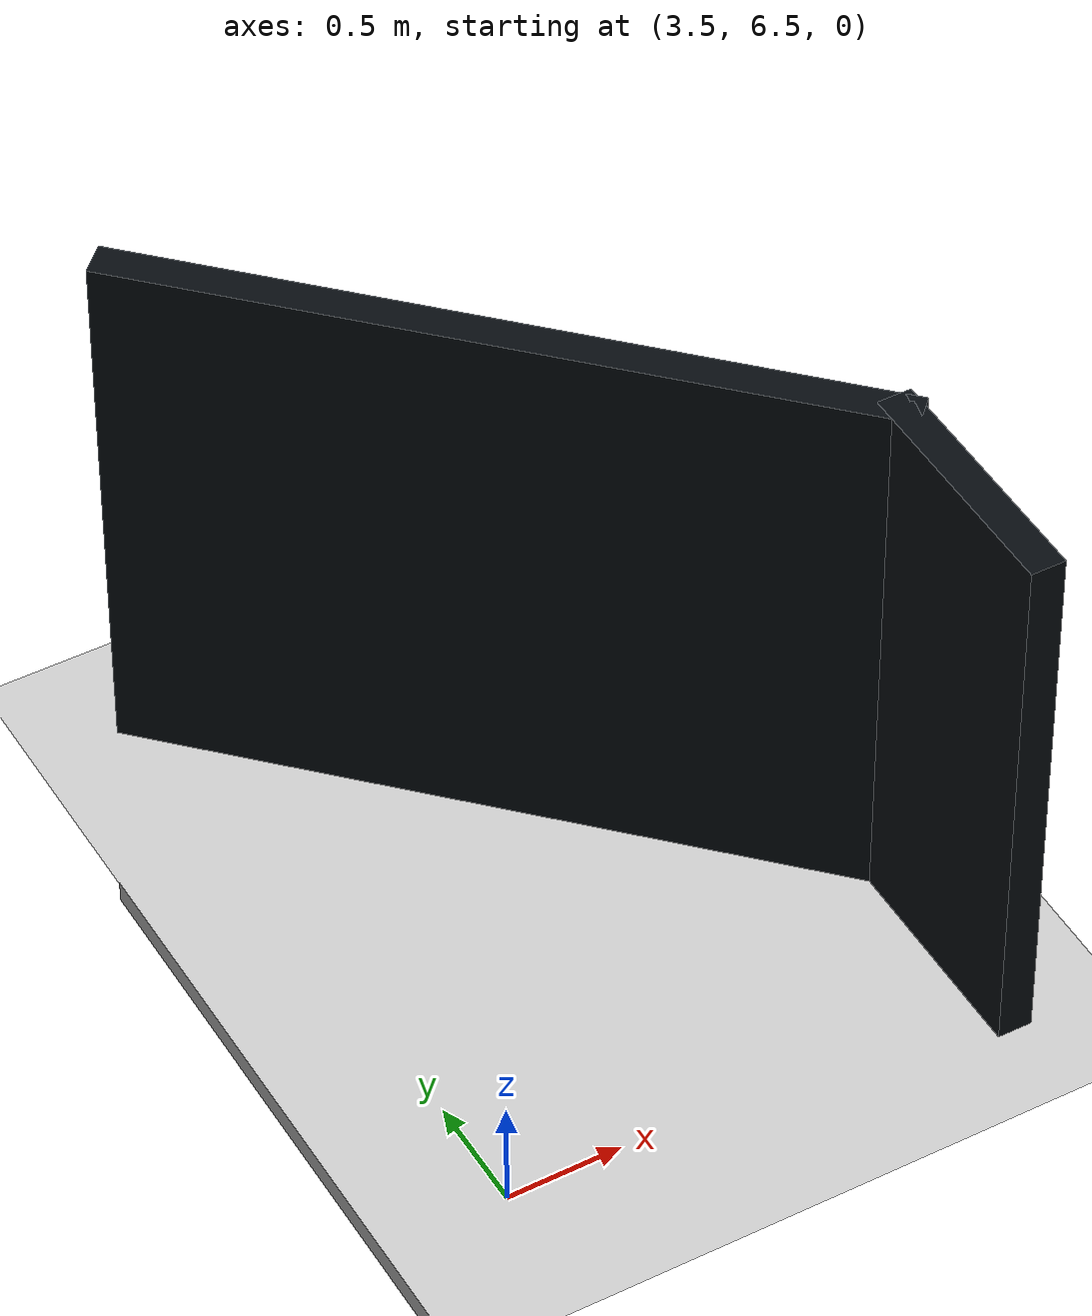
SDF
<sdf version="1.7">
 <world name="default">
  <model name="ground_plane">
   <static>1</static>
   <link name="link">
    <collision name="collision">
     <geometry><plane><normal>0 0 1</normal><size>100 100</size></plane></geometry>
     <surface><friction><ode><mu>100</mu><mu2>50</mu2></ode></friction></surface>
    </collision>
    <visual name="visual">
     <cast_shadows>0</cast_shadows>
     <geometry><plane><normal>0 0 1</normal><size>100 100</size></plane></geometry>
     <material>
      <script><uri>file://media/materials/scripts/gazebo.material</uri><name>Gazebo/Grey</name></script>
      <ambient>0.55 0.55 0.53 1</ambient>
      <diffuse>0.55 0.55 0.53 1</diffuse>
      <specular>0.08 0.08 0.08 1</specular>
      <emissive>0 0 0 1</emissive>
     </material>
    </visual>
   </link>
  </model>
  <model name="among_us_world">
   <pose>0.133216 -0.12311 0 0 -0 0</pose>
   <link name="Wall_1">
    <collision name="Wall_1_Collision">
     <geometry><box><size>3.25 0.15 2.5</size></box></geometry>
     <pose>0 0 1.25 0 -0 0</pose>
    </collision>
    <visual name="Wall_1_Visual">
     <pose>0 0 1.25 0 -0 0</pose>
     <geometry><box><size>3.25 0.15 2.5</size></box></geometry>
     <material>
      <script><uri>file://media/materials/scripts/gazebo.material</uri><name>Gazebo/Motorway</name></script>
      <ambient>0.025 0.045 0.06 1</ambient>
      <diffuse>0.025 0.045 0.06 1</diffuse>
      <specular>0.08 0.08 0.08 1</specular>
      <emissive>0 0 0 1</emissive>
     </material>
     <meta><layer>0</layer></meta>
    </visual>
    <pose>4.40446 8.47278 0 0 -0 -0.785267</pose>
   </link>
   <link name="Wall_4">
    <collision name="Wall_4_Collision">
     <geometry><box><size>1.06331 0.15 2.5</size></box></geometry>
     <pose>0 0 1.25 0 -0 0</pose>
    </collision>
    <visual name="Wall_4_Visual">
     <pose>0 0 1.25 0 -0 0</pose>
     <geometry><box><size>1.06331 0.15 2.5</size></box></geometry>
     <material>
      <script><uri>file://media/materials/scripts/gazebo.material</uri><name>Gazebo/Motorway</name></script>
      <ambient>0.025 0.045 0.06 1</ambient>
      <diffuse>0.025 0.045 0.06 1</diffuse>
      <specular>0.08 0.08 0.08 1</specular>
      <emissive>0 0 0 1</emissive>
     </material>
     <meta><layer>0</layer></meta>
    </visual>
    <pose>5.50068 6.92018 0 0 -0 -1.5708</pose>
   </link>
   <static>1</static>
  </model>
  <model name="asphalt_plane">
   <static>1</static>
   <link name="link">
    <collision name="collision"><geometry><box><size>20 20 0.1</size></box></geometry></collision>
    <visual name="visual">
     <cast_shadows>0</cast_shadows>
     <geometry><box><size>20 20 0.1</size></box></geometry>
     <material>
      <script><uri>file://media/materials/scripts/gazebo.material</uri><name>Gazebo/Grey</name></script>
      <ambient>0.23 0.23 0.22 1</ambient>
      <diffuse>0.23 0.23 0.22 1</diffuse>
      <specular>0.08 0.08 0.08 1</specular>
      <emissive>0 0 0 1</emissive>
     </material>
    </visual>
   </link>
   <pose>-12.6134 -1.31009 -0.045514 0 -0 0</pose>
  </model>
 </world>
</sdf>
